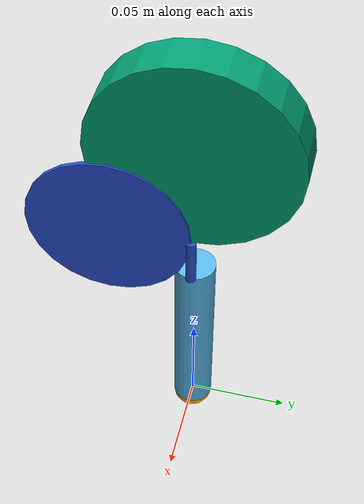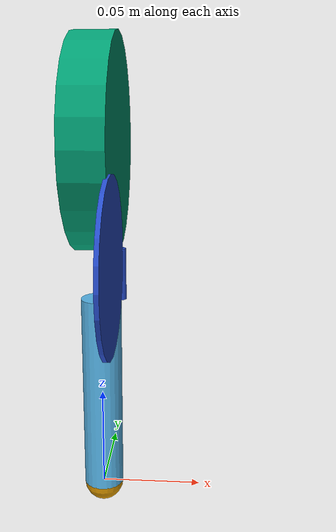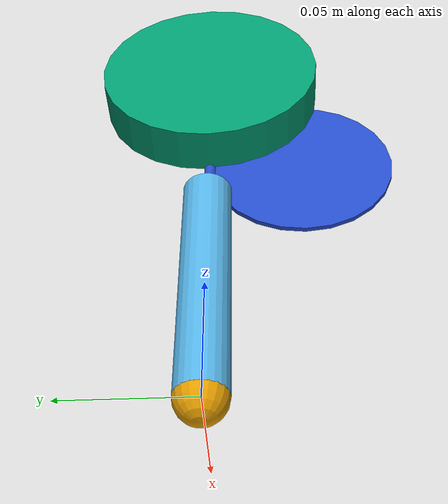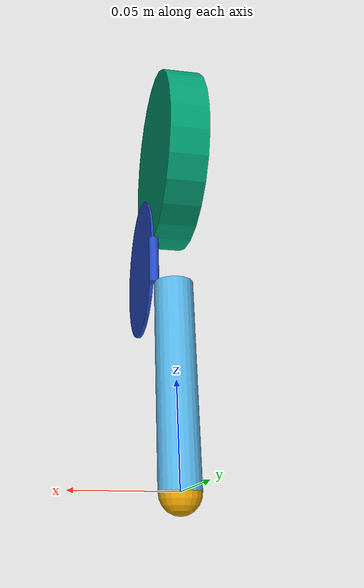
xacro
<?xml version="1.0"?>
<robot xmlns:xacro="http://www.ros.org/wiki/xacro" name="pendulum">
    <xacro:include filename="$(find pendulum)/urdf/arm.xacro"/>
    <xacro:include filename="$(find pendulum)/urdf/flywheel.xacro"/>

    <xacro:property name="base_mass_kg" value="0.040"/>
    <xacro:property name="base_x_m" value=".05"/>
    <xacro:property name="base_y_m" value=".05"/>
    <xacro:property name="base_z_m" value=".06"/>

    <xacro:property name="arm_linear_density_kg_m" value=".129"/>
    <xacro:property name="arm_length_m" value=".10"/>
    <xacro:property name="arm_width_m" value=".02"/>

    <xacro:property name="motor_mass_kg" value=".080"/>
    <xacro:property name="wheel_mass_kg" value=".037"/>
    <xacro:property name="solenoid_mass_kg" value="${.10206 * 2}"/>
    <xacro:property name="wheel_radius_m" value=".05"/>
    <xacro:property name="wheel_length_m" value=".02"/>

    <gazebo reference="base_link">
        <mu1>200</mu1>
        <mu2>200</mu2>
    </gazebo>

    <link name="base_link">
        <visual>
            <geometry>
                <sphere radius="0.01"/>
            </geometry>
        </visual>
        <collision>
            <geometry>
                <sphere radius="0.01"/>
            </geometry>
        </collision>
        <inertial>
            <mass value="${base_mass_kg}"/>
            <inertia ixx="10"
                     ixy="0.00"
                     ixz="0.00"
                     iyy="10"
                     iyz="0.00"
                     izz="10"/> <!-- ${base_mass_kg/12*(base_x_m**2 + base_z_m**2)} -->
        </inertial>
    </link>

    <xacro:arm length="${arm_length_m}"
               width="${arm_width_m}"
               linear_density="${arm_linear_density_kg_m}"/>

    <xacro:flywheel length="${wheel_length_m}"
                    radius="${wheel_radius_m}"
                    mass="${wheel_mass_kg}"
                    motor_mass="${motor_mass_kg}"
                    arm_length="${arm_length_m}"
                    solenoid_mass="${solenoid_mass_kg}"/>

    <!-- Add ROS plugin so we can interact with our robot -->
    <gazebo>
        <plugin name="gazebo_ros_control" filename="libgazebo_ros_control.so"/>
    </gazebo>
</robot>

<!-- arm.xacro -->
<robot xmlns:xacro="http://www.ros.org/wiki/xacro" name="pendulum">
    <xacro:macro name="arm" params="length width linear_density">

        <xacro:property name="mass" value="${linear_density * length}"/>

        <link name="arm_link">
            <visual>
                <origin rpy="0 0 0" xyz="0 0 ${length/2}"/>
                <geometry>
                    <cylinder radius="${width/2}" length="${length}"/>
                </geometry>
            </visual>
            <inertial>
                <origin rpy="0 0 0" xyz="0 0 ${length/2}"/>
                <mass value="${linear_density * length}"/>
                <inertia ixx="${mass/12*(width**2 + width**2)}"
                         ixy="0.00"
                         ixz="0.00"
                         iyy="${mass/12*(width**2 + width**2)}"
                         iyz="0.00"
                         izz="${mass/12*(width**2 + width**2)}"/>
            </inertial>
        </link>

        <joint name="spring_joint" type="prismatic">
            <parent link="base_link"/>
            <child link="arm_link"/>
            <axis xyz="0 0 1"/>
            <origin rpy="0 0 0" xyz="0 0 0"/>
            <!-- implement dynamics using the PID controller (D = damping) -->
            <limit lower="-1" upper="0" effort="1000" velocity="1000"/>
        </joint>

        <transmission name="$spring_joint_transmission">
            <type>transmission_interface/SimpleTransmission</type>
            <actuator name="$spring_joint_motor">
                <mechanicalReduction>1</mechanicalReduction>
            </actuator>
            <joint name="spring_joint">
                <hardwareInterface>hardware_interface/EffortJointInterface</hardwareInterface>
            </joint>
        </transmission>

    </xacro:macro>
</robot>

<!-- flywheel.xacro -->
<robot xmlns:xacro="http://www.ros.org/wiki/xacro" name="pendulum">
    <xacro:include filename="$(find pendulum)/urdf/imu.xacro"/>
    <xacro:property name="piston_offset" value="0.04"/>
    <xacro:macro name="flywheel" params="radius length mass motor_mass arm_length solenoid_mass"> <!-- offset -->
        <link name="flywheel_link">
            <visual>
                <geometry>
                    <cylinder length="${length}" radius="${radius}"/>
                </geometry>
            </visual>
            <inertial>
                <mass value="${mass + motor_mass + solenoid_mass}"/>
                <inertia ixx="${1/12*mass*(3*radius**2 + length**2)}"
                         ixy="0.0"
                         ixz="0.0"
                         iyy="${1/12*mass*(3*radius**2 + length**2)}"
                         iyz="0.0"
                         izz="${1/2*mass*(radius**2)}"/>
            </inertial>
        </link>

        <gazebo reference="arm2_link">
            <!-- must come before the link definition (major ???) -->
            <material>Gazebo/Blue</material>
        </gazebo>
        <link name="arm2_link">
            <visual>
                <origin rpy="0 0 0" xyz="0.01 0 0.0127"/>
                <geometry>
                    <cylinder length="0.0254" radius="0.00254"/>
                </geometry>
            </visual>
            <inertial>
                <origin rpy="0 0 0" xyz="0 0 0"/>
                <mass value="0.001"/>
                <inertia ixx="0.000001"
                         ixy="0.00"
                         ixz="0.00"
                         iyy="0.000001"
                         iyz="0.00"
                         izz="0.000001"/>
            </inertial>
        </link>

        <gazebo reference="arm3_link">
            <!-- must come before the link definition (major ???) -->
            <material>Gazebo/Blue</material>
        </gazebo>
        <link name="arm3_link">
            <visual>
                <origin rpy="0 ${3.1415/2} 0" xyz="0.01 ${-piston_offset} 0.0"/>
                <geometry>
                    <cylinder length="0.002" radius="${piston_offset}"/>
                </geometry>
            </visual>
            <inertial>
                <origin rpy="0 0 0" xyz="0 -0.01 0.0"/>
                <mass value="0.001"/>
                <inertia ixx="0.000001"
                         ixy="0.00"
                         ixz="0.00"
                         iyy="0.000001"
                         iyz="0.00"
                         izz="0.000001"/>
            </inertial>
        </link>

        <link name="arm4_link">
            <inertial>
                <origin rpy="0 0 0" xyz="0 0 0"/>
                <mass value="0.001"/>
                <inertia ixx="0.000001"
                         ixy="0.00"
                         ixz="0.00"
                         iyy="0.000001"
                         iyz="0.00"
                         izz="0.000001"/>
            </inertial>
        </link>

        <xacro:imu origin="arm4_link"/>

        <joint name="arm_piston_base" type="continuous">
            <axis xyz="1 0 0"/>
            <parent link="arm_link"/>
            <child link="arm2_link"/>
            <origin rpy="0 0 0" xyz="0 0 ${arm_length}"/>
        </joint>
        <joint name="arm_piston_top" type="continuous">
            <axis xyz="1 0 0"/>
            <parent link="arm2_link"/>
            <child link="arm3_link"/>
            <origin rpy="0 0 0" xyz="0 0 0.0254"/>
        </joint>
        <joint name="servo_joint" type="revolute">
            <axis xyz="1 0 0"/>
            <parent link="arm3_link"/>
            <child link="arm4_link"/>
            <origin rpy="0 0 0" xyz="0 ${-piston_offset} 0"/>
            <limit lower="0" upper="${3.1415/4}" effort="1000" velocity="1000"/>
        </joint>

        <gazebo>
            <joint name="arm_piston_align" type="prismatic">
                <axis>
                    <xyz>0 0 1</xyz>
                    <limit>
                        <lower>-1</lower>
                        <upper>1</upper>
                    </limit>
                </axis>
                <parent>arm_link</parent>
                <child>arm4_link</child>
                <pose>0 0 0 0 0 0</pose>
            </joint>
        </gazebo>

        <joint name="flywheel_joint" type="continuous">
            <axis xyz="0 0 1"/>
            <parent link="arm4_link"/>
            <child link="flywheel_link"/>
            <origin rpy="0 ${3.1415/2} 0" xyz="0 ${piston_offset} ${radius}"/> <!-- ${offset} -->
        </joint>

        <transmission name="$arm_piston_transmission">
            <type>transmission_interface/SimpleTransmission</type>
            <actuator name="$arm_piston_motor">
                <mechanicalReduction>1</mechanicalReduction>
            </actuator>
            <joint name="servo_joint">
                <hardwareInterface>hardware_interface/EffortJointInterface</hardwareInterface>
            </joint>
        </transmission>

        <transmission name="$flywheel_transmission">
            <type>transmission_interface/SimpleTransmission</type>
            <actuator name="$flywheel_motor">
                <mechanicalReduction>1</mechanicalReduction>
            </actuator>
            <joint name="flywheel_joint">
                <hardwareInterface>hardware_interface/EffortJointInterface</hardwareInterface>
            </joint>
        </transmission>
    </xacro:macro>
</robot>

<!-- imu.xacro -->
<robot name="pendulum" xmlns:xacro="http://www.ros.org/wiki/xacro">
    <xacro:macro name="imu" params="origin">

        <link name="imu_link" />

        <joint name="${origin}_imu" type="fixed">
            <parent link="${origin}"/>
            <child link="imu_link"/>
            <origin rpy="0 0 0" xyz="0 0 0"/>
            <axis xyz="0 0 0"/>
        </joint>

        <gazebo reference="imu_link">
            <gravity>true</gravity>
            <sensor name="imu_sensor" type="imu">
                <always_on>true</always_on>
                <update_rate>1000</update_rate> <!-- maximum rate it will try to acquire data-->
                <visualize>true</visualize>
                <topic>__default_topic__</topic>
                <plugin filename="libgazebo_ros_imu_sensor.so" name="imu_plugin">
                    <topicName>imu_raw</topicName>
                    <bodyName>imu_link</bodyName>
                    <updateRateHZ>1000.0</updateRateHZ>
                    <gaussianNoise>1.0</gaussianNoise>
                    <xyzOffset>0 0 0</xyzOffset>
                    <rpyOffset>0 0 0</rpyOffset>
                    <frameName>imu_link</frameName>
                </plugin>
                <pose>0 0 0 0 0 0</pose>
            </sensor>
        </gazebo>

    </xacro:macro>
</robot>
